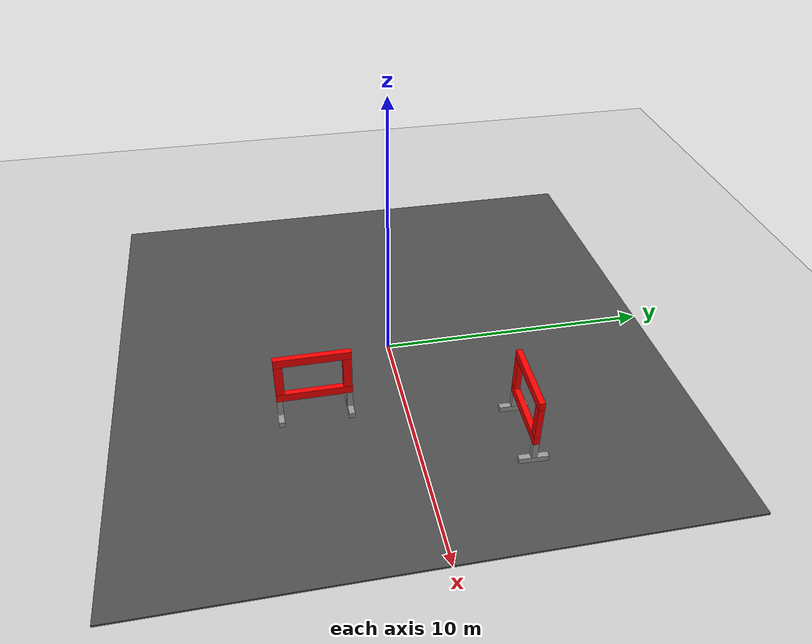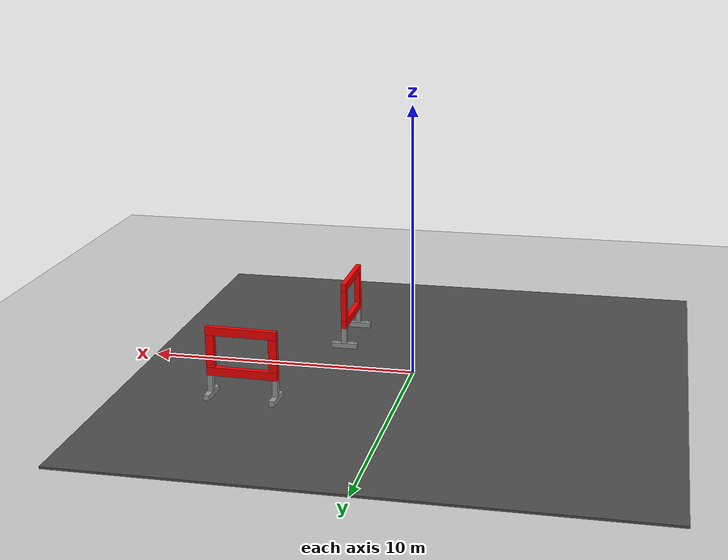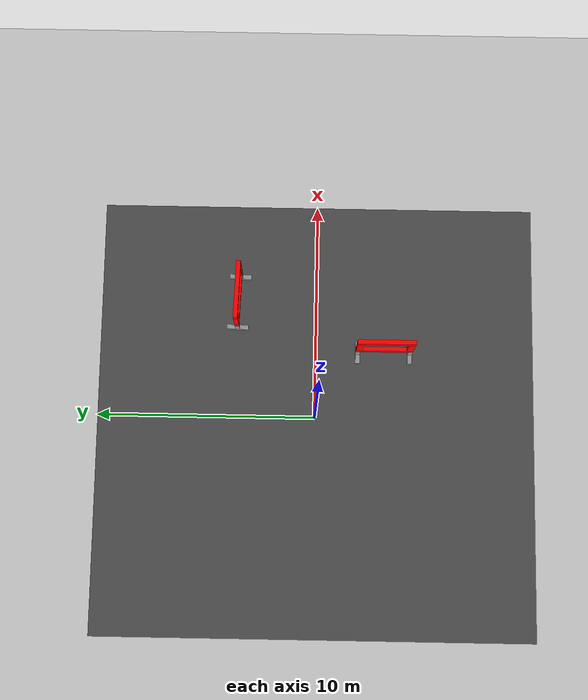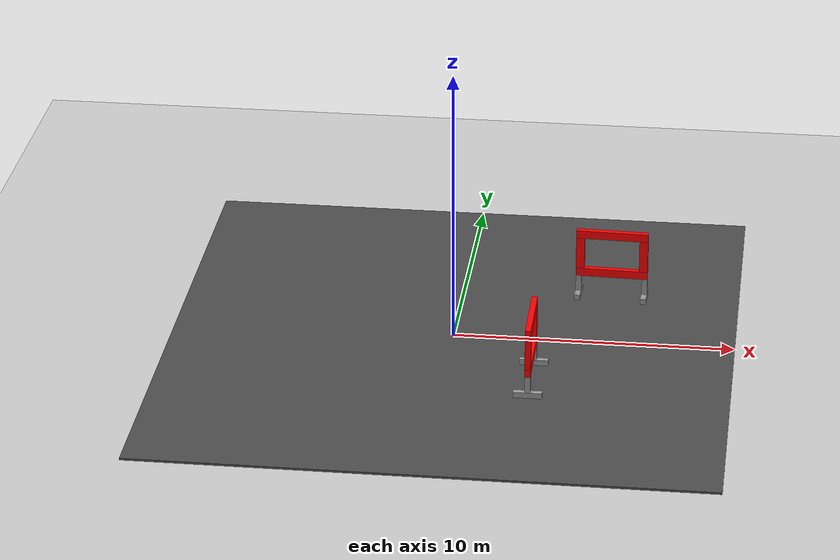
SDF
<sdf version="1.6">
 <world name="default">
  <model name="ground_plane">
   <static>1</static>
   <link name="link">
    <collision name="collision">
     <geometry><plane><normal>0 0 1</normal><size>100 100</size></plane></geometry>
     <surface>
      <contact><collide_bitmask>65535</collide_bitmask></contact>
      <friction><ode><mu>100</mu><mu2>50</mu2></ode></friction>
     </surface>
    </collision>
    <visual name="visual">
     <cast_shadows>0</cast_shadows>
     <geometry><plane><normal>0 0 1</normal><size>100 100</size></plane></geometry>
     <material>
      <script><uri>file://media/materials/scripts/gazebo.material</uri><name>Gazebo/Grey</name></script>
     </material>
    </visual>
   </link>
  </model>
  <model name="asphalt_plane">
   <static>1</static>
   <link name="link">
    <collision name="collision"><geometry><box><size>20 20 0.1</size></box></geometry></collision>
    <visual name="visual">
     <cast_shadows>0</cast_shadows>
     <geometry><box><size>20 20 0.1</size></box></geometry>
     <material>
      <script>
       <uri>model://asphalt_plane/materials/scripts</uri>
       <uri>model://asphalt_plane/materials/textures</uri>
       <name>vrc/asphalt</name>
      </script>
     </material>
    </visual>
   </link>
   <pose>-0.002774 -0.037133 0 0 -0 0</pose>
  </model>
  <model name="door_2_1.2_0">
   <model name="door">
    <link name="link_0">
     <inertial>
      <mass>1</mass>
      <inertia>
       <ixx>0.166667</ixx>
       <ixy>0</ixy>
       <ixz>0</ixz>
       <iyy>0.166667</iyy>
       <iyz>0</iyz>
       <izz>0.166667</izz>
      </inertia>
     </inertial>
     <pose>-0.195931 0.139969 -0.0875 0 -0 0</pose>
     <visual name="visual">
      <geometry><box><size>0.2 1 0.2</size></box></geometry>
      <material>
       <lighting>1</lighting>
       <script><uri>file://media/materials/scripts/gazebo.material</uri><name>Gazebo/Grey</name></script>
       <shader type="pixel"><normal_map>__default__</normal_map></shader>
       <ambient>0.4 0.4 0.4 1</ambient>
       <diffuse>0.7 0.7 0.7 1</diffuse>
       <specular>0.01 0.01 0.01 1</specular>
       <emissive>0 0 0 1</emissive>
      </material>
     </visual>
     <collision name="collision">
      <geometry><box><size>0.2 1 0.2</size></box></geometry>
      <surface>
       <friction>
        <ode><mu>1</mu><mu2>1</mu2><fdir1>0 0 0</fdir1><slip1>0</slip1><slip2>0</slip2></ode>
        <torsional>
         <coefficient>1</coefficient>
         <patch_radius>0</patch_radius>
         <surface_radius>0</surface_radius>
         <use_patch_radius>1</use_patch_radius>
         <ode><slip>0</slip></ode>
        </torsional>
       </friction>
       <bounce><restitution_coefficient>0</restitution_coefficient><threshold>1e+06</threshold></bounce>
       <contact>
        <collide_without_contact>0</collide_without_contact>
        <collide_without_contact_bitmask>1</collide_without_contact_bitmask>
        <collide_bitmask>1</collide_bitmask>
        <ode>
         <soft_cfm>0</soft_cfm>
         <soft_erp>0.2</soft_erp>
         <kp>1e+13</kp>
         <kd>1</kd>
         <max_vel>0.01</max_vel>
         <min_depth>0</min_depth>
        </ode>
        <bullet>
         <split_impulse>1</split_impulse>
         <split_impulse_penetration_threshold>-0.01</split_impulse_penetration_threshold>
         <soft_cfm>0</soft_cfm>
         <soft_erp>0.2</soft_erp>
         <kp>1e+13</kp>
         <kd>1</kd>
        </bullet>
       </contact>
      </surface>
     </collision>
    </link>
    <link name="link_0_clone">
     <inertial>
      <mass>1</mass>
      <inertia>
       <ixx>0.166667</ixx>
       <ixy>0</ixy>
       <ixz>0</ixz>
       <iyy>0.166667</iyy>
       <iyz>0</iyz>
       <izz>0.166667</izz>
      </inertia>
     </inertial>
     <pose>2.20407 0.139969 -0.0875 0 -0 0</pose>
     <visual name="visual">
      <geometry><box><size>0.2 1 0.2</size></box></geometry>
      <material>
       <lighting>1</lighting>
       <script><uri>file://media/materials/scripts/gazebo.material</uri><name>Gazebo/Grey</name></script>
       <shader type="pixel"><normal_map>__default__</normal_map></shader>
       <ambient>0.4 0.4 0.4 1</ambient>
       <diffuse>0.7 0.7 0.7 1</diffuse>
       <specular>0.01 0.01 0.01 1</specular>
       <emissive>0 0 0 1</emissive>
      </material>
     </visual>
     <collision name="collision">
      <geometry><box><size>0.2 1 0.2</size></box></geometry>
      <surface>
       <friction>
        <ode><mu>1</mu><mu2>1</mu2><fdir1>0 0 0</fdir1><slip1>0</slip1><slip2>0</slip2></ode>
        <torsional>
         <coefficient>1</coefficient>
         <patch_radius>0</patch_radius>
         <surface_radius>0</surface_radius>
         <use_patch_radius>1</use_patch_radius>
         <ode><slip>0</slip></ode>
        </torsional>
       </friction>
       <bounce><restitution_coefficient>0</restitution_coefficient><threshold>1e+06</threshold></bounce>
       <contact>
        <collide_without_contact>0</collide_without_contact>
        <collide_without_contact_bitmask>1</collide_without_contact_bitmask>
        <collide_bitmask>1</collide_bitmask>
        <ode>
         <soft_cfm>0</soft_cfm>
         <soft_erp>0.2</soft_erp>
         <kp>1e+13</kp>
         <kd>1</kd>
         <max_vel>0.01</max_vel>
         <min_depth>0</min_depth>
        </ode>
        <bullet>
         <split_impulse>1</split_impulse>
         <split_impulse_penetration_threshold>-0.01</split_impulse_penetration_threshold>
         <soft_cfm>0</soft_cfm>
         <soft_erp>0.2</soft_erp>
         <kp>1e+13</kp>
         <kd>1</kd>
        </bullet>
       </contact>
      </surface>
     </collision>
    </link>
    <link name="link_1">
     <inertial>
      <mass>1</mass>
      <inertia>
       <ixx>0.166667</ixx>
       <ixy>0</ixy>
       <ixz>0</ixz>
       <iyy>0.166667</iyy>
       <iyz>0</iyz>
       <izz>0.166667</izz>
      </inertia>
     </inertial>
     <pose>-0.195931 0.139969 0.3125 0 -0 0</pose>
     <visual name="visual">
      <geometry><box><size>0.2 0.2 0.6</size></box></geometry>
      <material>
       <lighting>1</lighting>
       <script><uri>file://media/materials/scripts/gazebo.material</uri><name>Gazebo/Grey</name></script>
       <shader type="pixel"><normal_map>__default__</normal_map></shader>
       <ambient>0.4 0.4 0.4 1</ambient>
       <diffuse>0.7 0.7 0.7 1</diffuse>
       <specular>0.01 0.01 0.01 1</specular>
       <emissive>0 0 0 1</emissive>
      </material>
     </visual>
     <collision name="collision">
      <geometry><box><size>0.2 0.2 0.6</size></box></geometry>
      <surface>
       <friction>
        <ode><mu>1</mu><mu2>1</mu2><fdir1>0 0 0</fdir1><slip1>0</slip1><slip2>0</slip2></ode>
        <torsional>
         <coefficient>1</coefficient>
         <patch_radius>0</patch_radius>
         <surface_radius>0</surface_radius>
         <use_patch_radius>1</use_patch_radius>
         <ode><slip>0</slip></ode>
        </torsional>
       </friction>
       <bounce><restitution_coefficient>0</restitution_coefficient><threshold>1e+06</threshold></bounce>
       <contact>
        <collide_without_contact>0</collide_without_contact>
        <collide_without_contact_bitmask>1</collide_without_contact_bitmask>
        <collide_bitmask>1</collide_bitmask>
        <ode>
         <soft_cfm>0</soft_cfm>
         <soft_erp>0.2</soft_erp>
         <kp>1e+13</kp>
         <kd>1</kd>
         <max_vel>0.01</max_vel>
         <min_depth>0</min_depth>
        </ode>
        <bullet>
         <split_impulse>1</split_impulse>
         <split_impulse_penetration_threshold>-0.01</split_impulse_penetration_threshold>
         <soft_cfm>0</soft_cfm>
         <soft_erp>0.2</soft_erp>
         <kp>1e+13</kp>
         <kd>1</kd>
        </bullet>
       </contact>
      </surface>
     </collision>
    </link>
    <link name="link_1_clone">
     <inertial>
      <mass>1</mass>
      <inertia>
       <ixx>0.166667</ixx>
       <ixy>0</ixy>
       <ixz>0</ixz>
       <iyy>0.166667</iyy>
       <iyz>0</iyz>
       <izz>0.166667</izz>
      </inertia>
     </inertial>
     <pose>2.20407 0.139969 0.3125 0 -0 0</pose>
     <visual name="visual">
      <geometry><box><size>0.2 0.2 0.6</size></box></geometry>
      <material>
       <lighting>1</lighting>
       <script><uri>file://media/materials/scripts/gazebo.material</uri><name>Gazebo/Grey</name></script>
       <shader type="pixel"><normal_map>__default__</normal_map></shader>
       <ambient>0.4 0.4 0.4 1</ambient>
       <diffuse>0.7 0.7 0.7 1</diffuse>
       <specular>0.01 0.01 0.01 1</specular>
       <emissive>0 0 0 1</emissive>
      </material>
     </visual>
     <collision name="collision">
      <geometry><box><size>0.2 0.2 0.6</size></box></geometry>
      <surface>
       <friction>
        <ode><mu>1</mu><mu2>1</mu2><fdir1>0 0 0</fdir1><slip1>0</slip1><slip2>0</slip2></ode>
        <torsional>
         <coefficient>1</coefficient>
         <patch_radius>0</patch_radius>
         <surface_radius>0</surface_radius>
         <use_patch_radius>1</use_patch_radius>
         <ode><slip>0</slip></ode>
        </torsional>
       </friction>
       <bounce><restitution_coefficient>0</restitution_coefficient><threshold>1e+06</threshold></bounce>
       <contact>
        <collide_without_contact>0</collide_without_contact>
        <collide_without_contact_bitmask>1</collide_without_contact_bitmask>
        <collide_bitmask>1</collide_bitmask>
        <ode>
         <soft_cfm>0</soft_cfm>
         <soft_erp>0.2</soft_erp>
         <kp>1e+13</kp>
         <kd>1</kd>
         <max_vel>0.01</max_vel>
         <min_depth>0</min_depth>
        </ode>
        <bullet>
         <split_impulse>1</split_impulse>
         <split_impulse_penetration_threshold>-0.01</split_impulse_penetration_threshold>
         <soft_cfm>0</soft_cfm>
         <soft_erp>0.2</soft_erp>
         <kp>1e+13</kp>
         <kd>1</kd>
        </bullet>
       </contact>
      </surface>
     </collision>
    </link>
    <link name="link_2">
     <inertial>
      <mass>1</mass>
      <inertia>
       <ixx>0.166667</ixx>
       <ixy>0</ixy>
       <ixz>0</ixz>
       <iyy>0.166667</iyy>
       <iyz>0</iyz>
       <izz>0.166667</izz>
      </inertia>
     </inertial>
     <pose>1.00407 0.139969 0.7625 0 -0 0</pose>
     <visual name="visual">
      <geometry><box><size>2.6 0.2 0.3</size></box></geometry>
      <material>
       <lighting>1</lighting>
       <script><uri>file://media/materials/scripts/gazebo.material</uri><name>Gazebo/Grey</name></script>
       <shader type="pixel"><normal_map>__default__</normal_map></shader>
       <ambient>1 0 0 1</ambient>
       <diffuse>0.7 0.7 0.7 1</diffuse>
       <specular>0.01 0.01 0.01 1</specular>
       <emissive>0 0 0 1</emissive>
      </material>
     </visual>
     <collision name="collision">
      <geometry><box><size>2.6 0.2 0.3</size></box></geometry>
      <surface>
       <friction>
        <ode><mu>1</mu><mu2>1</mu2><fdir1>0 0 0</fdir1><slip1>0</slip1><slip2>0</slip2></ode>
        <torsional>
         <coefficient>1</coefficient>
         <patch_radius>0</patch_radius>
         <surface_radius>0</surface_radius>
         <use_patch_radius>1</use_patch_radius>
         <ode><slip>0</slip></ode>
        </torsional>
       </friction>
       <bounce><restitution_coefficient>0</restitution_coefficient><threshold>1e+06</threshold></bounce>
       <contact>
        <collide_without_contact>0</collide_without_contact>
        <collide_without_contact_bitmask>1</collide_without_contact_bitmask>
        <collide_bitmask>1</collide_bitmask>
        <ode>
         <soft_cfm>0</soft_cfm>
         <soft_erp>0.2</soft_erp>
         <kp>1e+13</kp>
         <kd>1</kd>
         <max_vel>0.01</max_vel>
         <min_depth>0</min_depth>
        </ode>
        <bullet>
         <split_impulse>1</split_impulse>
         <split_impulse_penetration_threshold>-0.01</split_impulse_penetration_threshold>
         <soft_cfm>0</soft_cfm>
         <soft_erp>0.2</soft_erp>
         <kp>1e+13</kp>
         <kd>1</kd>
        </bullet>
       </contact>
      </surface>
     </collision>
    </link>
    <link name="link_2_clone">
     <inertial>
      <mass>1</mass>
      <inertia>
       <ixx>0.166667</ixx>
       <ixy>0</ixy>
       <ixz>0</ixz>
       <iyy>0.166667</iyy>
       <iyz>0</iyz>
       <izz>0.166667</izz>
      </inertia>
     </inertial>
     <pose>1.00407 0.139969 2.2625 0 -0 0</pose>
     <visual name="visual">
      <geometry><box><size>2.6 0.2 0.3</size></box></geometry>
      <material>
       <lighting>1</lighting>
       <script><uri>file://media/materials/scripts/gazebo.material</uri><name>Gazebo/Grey</name></script>
       <shader type="pixel"><normal_map>__default__</normal_map></shader>
       <ambient>1 0 0 1</ambient>
       <diffuse>0 0 0 1</diffuse>
       <specular>0 0 0 1</specular>
       <emissive>0 0 0 1</emissive>
      </material>
     </visual>
     <collision name="collision">
      <geometry><box><size>2.6 0.2 0.3</size></box></geometry>
      <surface>
       <friction>
        <ode><mu>1</mu><mu2>1</mu2><fdir1>0 0 0</fdir1><slip1>0</slip1><slip2>0</slip2></ode>
        <torsional>
         <coefficient>1</coefficient>
         <patch_radius>0</patch_radius>
         <surface_radius>0</surface_radius>
         <use_patch_radius>1</use_patch_radius>
         <ode><slip>0</slip></ode>
        </torsional>
       </friction>
       <bounce><restitution_coefficient>0</restitution_coefficient><threshold>1e+06</threshold></bounce>
       <contact>
        <collide_without_contact>0</collide_without_contact>
        <collide_without_contact_bitmask>1</collide_without_contact_bitmask>
        <collide_bitmask>1</collide_bitmask>
        <ode>
         <soft_cfm>0</soft_cfm>
         <soft_erp>0.2</soft_erp>
         <kp>1e+13</kp>
         <kd>1</kd>
         <max_vel>0.01</max_vel>
         <min_depth>0</min_depth>
        </ode>
        <bullet>
         <split_impulse>1</split_impulse>
         <split_impulse_penetration_threshold>-0.01</split_impulse_penetration_threshold>
         <soft_cfm>0</soft_cfm>
         <soft_erp>0.2</soft_erp>
         <kp>1e+13</kp>
         <kd>1</kd>
        </bullet>
       </contact>
      </surface>
     </collision>
    </link>
    <link name="link_3">
     <inertial>
      <mass>1</mass>
      <inertia>
       <ixx>0.166667</ixx>
       <ixy>0</ixy>
       <ixz>0</ixz>
       <iyy>0.166667</iyy>
       <iyz>0</iyz>
       <izz>0.166667</izz>
      </inertia>
     </inertial>
     <pose>-0.145931 0.139969 1.5125 0 -0 0</pose>
     <visual name="visual">
      <geometry><box><size>0.3 0.2 1.2</size></box></geometry>
      <material>
       <lighting>1</lighting>
       <script><uri>file://media/materials/scripts/gazebo.material</uri><name>Gazebo/Grey</name></script>
       <shader type="pixel"><normal_map>__default__</normal_map></shader>
       <ambient>1 0 0 1</ambient>
       <diffuse>0.7 0.7 0.7 1</diffuse>
       <specular>0.01 0.01 0.01 1</specular>
       <emissive>0 0 0 1</emissive>
      </material>
     </visual>
     <collision name="collision">
      <geometry><box><size>0.3 0.2 1.2</size></box></geometry>
      <surface>
       <friction>
        <ode><mu>1</mu><mu2>1</mu2><fdir1>0 0 0</fdir1><slip1>0</slip1><slip2>0</slip2></ode>
        <torsional>
         <coefficient>1</coefficient>
         <patch_radius>0</patch_radius>
         <surface_radius>0</surface_radius>
         <use_patch_radius>1</use_patch_radius>
         <ode><slip>0</slip></ode>
        </torsional>
       </friction>
       <bounce><restitution_coefficient>0</restitution_coefficient><threshold>1e+06</threshold></bounce>
       <contact>
        <collide_without_contact>0</collide_without_contact>
        <collide_without_contact_bitmask>1</collide_without_contact_bitmask>
        <collide_bitmask>1</collide_bitmask>
        <ode>
         <soft_cfm>0</soft_cfm>
         <soft_erp>0.2</soft_erp>
         <kp>1e+13</kp>
         <kd>1</kd>
         <max_vel>0.01</max_vel>
         <min_depth>0</min_depth>
        </ode>
        <bullet>
         <split_impulse>1</split_impulse>
         <split_impulse_penetration_threshold>-0.01</split_impulse_penetration_threshold>
         <soft_cfm>0</soft_cfm>
         <soft_erp>0.2</soft_erp>
         <kp>1e+13</kp>
         <kd>1</kd>
        </bullet>
       </contact>
      </surface>
     </collision>
    </link>
    <link name="link_3_clone">
     <inertial>
      <mass>1</mass>
      <inertia>
       <ixx>0.166667</ixx>
       <ixy>0</ixy>
       <ixz>0</ixz>
       <iyy>0.166667</iyy>
       <iyz>0</iyz>
       <izz>0.166667</izz>
      </inertia>
     </inertial>
     <pose>2.15407 0.139969 1.5125 0 -0 0</pose>
     <visual name="visual">
      <geometry><box><size>0.3 0.2 1.2</size></box></geometry>
      <material>
       <lighting>1</lighting>
       <script><uri>file://media/materials/scripts/gazebo.material</uri><name>Gazebo/Grey</name></script>
       <shader type="pixel"><normal_map>__default__</normal_map></shader>
       <ambient>1 0 0 1</ambient>
       <diffuse>0.7 0.7 0.7 1</diffuse>
       <specular>0.01 0.01 0.01 1</specular>
       <emissive>0 0 0 1</emissive>
      </material>
     </visual>
     <collision name="collision">
      <geometry><box><size>0.3 0.2 1.2</size></box></geometry>
      <surface>
       <friction>
        <ode><mu>1</mu><mu2>1</mu2><fdir1>0 0 0</fdir1><slip1>0</slip1><slip2>0</slip2></ode>
        <torsional>
         <coefficient>1</coefficient>
         <patch_radius>0</patch_radius>
         <surface_radius>0</surface_radius>
         <use_patch_radius>1</use_patch_radius>
         <ode><slip>0</slip></ode>
        </torsional>
       </friction>
       <bounce><restitution_coefficient>0</restitution_coefficient><threshold>1e+06</threshold></bounce>
       <contact>
        <collide_without_contact>0</collide_without_contact>
        <collide_without_contact_bitmask>1</collide_without_contact_bitmask>
        <collide_bitmask>1</collide_bitmask>
        <ode>
         <soft_cfm>0</soft_cfm>
         <soft_erp>0.2</soft_erp>
         <kp>1e+13</kp>
         <kd>1</kd>
         <max_vel>0.01</max_vel>
         <min_depth>0</min_depth>
        </ode>
        <bullet>
         <split_impulse>1</split_impulse>
         <split_impulse_penetration_threshold>-0.01</split_impulse_penetration_threshold>
         <soft_cfm>0</soft_cfm>
         <soft_erp>0.2</soft_erp>
         <kp>1e+13</kp>
         <kd>1</kd>
        </bullet>
       </contact>
      </surface>
     </collision>
    </link>
    <joint name="link_0_JOINT_0" type="fixed">
     <parent>link_0</parent>
     <child>link_0_clone</child>
     <physics>
      <ode><limit><cfm>0</cfm><erp>0.2</erp></limit><suspension><cfm>0</cfm><erp>0.2</erp></suspension></ode>
     </physics>
    </joint>
    <joint name="link_0_JOINT_1" type="fixed">
     <parent>link_0</parent>
     <child>link_1</child>
     <physics>
      <ode><limit><cfm>0</cfm><erp>0.2</erp></limit><suspension><cfm>0</cfm><erp>0.2</erp></suspension></ode>
     </physics>
    </joint>
    <joint name="link_0_clone_JOINT_2" type="fixed">
     <parent>link_0_clone</parent>
     <child>link_1_clone</child>
     <physics>
      <ode><limit><cfm>0</cfm><erp>0.2</erp></limit><suspension><cfm>0</cfm><erp>0.2</erp></suspension></ode>
     </physics>
    </joint>
    <joint name="link_1_JOINT_3" type="fixed">
     <parent>link_1</parent>
     <child>link_2</child>
     <physics>
      <ode><limit><cfm>0</cfm><erp>0.2</erp></limit><suspension><cfm>0</cfm><erp>0.2</erp></suspension></ode>
     </physics>
    </joint>
    <joint name="link_2_JOINT_4" type="fixed">
     <parent>link_2</parent>
     <child>link_3</child>
     <physics>
      <ode><limit><cfm>0</cfm><erp>0.2</erp></limit><suspension><cfm>0</cfm><erp>0.2</erp></suspension></ode>
     </physics>
    </joint>
    <joint name="link_2_JOINT_5" type="fixed">
     <parent>link_2</parent>
     <child>link_3_clone</child>
     <physics>
      <ode><limit><cfm>0</cfm><erp>0.2</erp></limit><suspension><cfm>0</cfm><erp>0.2</erp></suspension></ode>
     </physics>
    </joint>
    <joint name="link_2_JOINT_6" type="fixed">
     <parent>link_2</parent>
     <child>link_2_clone</child>
     <physics>
      <ode><limit><cfm>0</cfm><erp>0.2</erp></limit><suspension><cfm>0</cfm><erp>0.2</erp></suspension></ode>
     </physics>
    </joint>
    <static>0</static>
   </model>
   <static>0</static>
   <pose>3.20508 -4.12663 0.237361 -2e-06 9.3e-05 1.57435</pose>
  </model>
  <model name="door_2_1.2_0_clone_0">
   <model name="door">
    <link name="link_0">
     <inertial>
      <mass>1</mass>
      <inertia>
       <ixx>0.166667</ixx>
       <ixy>0</ixy>
       <ixz>0</ixz>
       <iyy>0.166667</iyy>
       <iyz>0</iyz>
       <izz>0.166667</izz>
      </inertia>
     </inertial>
     <pose>-0.195931 0.139969 -0.0875 0 -0 0</pose>
     <visual name="visual">
      <geometry><box><size>0.2 1 0.2</size></box></geometry>
      <material>
       <lighting>1</lighting>
       <script><uri>file://media/materials/scripts/gazebo.material</uri><name>Gazebo/Grey</name></script>
       <shader type="pixel"><normal_map>__default__</normal_map></shader>
       <ambient>0.4 0.4 0.4 1</ambient>
       <diffuse>0.7 0.7 0.7 1</diffuse>
       <specular>0.01 0.01 0.01 1</specular>
       <emissive>0 0 0 1</emissive>
      </material>
     </visual>
     <collision name="collision">
      <geometry><box><size>0.2 1 0.2</size></box></geometry>
      <surface>
       <friction>
        <ode><mu>1</mu><mu2>1</mu2><fdir1>0 0 0</fdir1><slip1>0</slip1><slip2>0</slip2></ode>
        <torsional>
         <coefficient>1</coefficient>
         <patch_radius>0</patch_radius>
         <surface_radius>0</surface_radius>
         <use_patch_radius>1</use_patch_radius>
         <ode><slip>0</slip></ode>
        </torsional>
       </friction>
       <bounce><restitution_coefficient>0</restitution_coefficient><threshold>1e+06</threshold></bounce>
       <contact>
        <collide_without_contact>0</collide_without_contact>
        <collide_without_contact_bitmask>1</collide_without_contact_bitmask>
        <collide_bitmask>1</collide_bitmask>
        <ode>
         <soft_cfm>0</soft_cfm>
         <soft_erp>0.2</soft_erp>
         <kp>1e+13</kp>
         <kd>1</kd>
         <max_vel>0.01</max_vel>
         <min_depth>0</min_depth>
        </ode>
        <bullet>
         <split_impulse>1</split_impulse>
         <split_impulse_penetration_threshold>-0.01</split_impulse_penetration_threshold>
         <soft_cfm>0</soft_cfm>
         <soft_erp>0.2</soft_erp>
         <kp>1e+13</kp>
         <kd>1</kd>
        </bullet>
       </contact>
      </surface>
     </collision>
    </link>
    <link name="link_0_clone">
     <inertial>
      <mass>1</mass>
      <inertia>
       <ixx>0.166667</ixx>
       <ixy>0</ixy>
       <ixz>0</ixz>
       <iyy>0.166667</iyy>
       <iyz>0</iyz>
       <izz>0.166667</izz>
      </inertia>
     </inertial>
     <pose>2.20407 0.139969 -0.0875 0 -0 0</pose>
     <visual name="visual">
      <geometry><box><size>0.2 1 0.2</size></box></geometry>
      <material>
       <lighting>1</lighting>
       <script><uri>file://media/materials/scripts/gazebo.material</uri><name>Gazebo/Grey</name></script>
       <shader type="pixel"><normal_map>__default__</normal_map></shader>
       <ambient>0.4 0.4 0.4 1</ambient>
       <diffuse>0.7 0.7 0.7 1</diffuse>
       <specular>0.01 0.01 0.01 1</specular>
       <emissive>0 0 0 1</emissive>
      </material>
     </visual>
     <collision name="collision">
      <geometry><box><size>0.2 1 0.2</size></box></geometry>
      <surface>
       <friction>
        <ode><mu>1</mu><mu2>1</mu2><fdir1>0 0 0</fdir1><slip1>0</slip1><slip2>0</slip2></ode>
        <torsional>
         <coefficient>1</coefficient>
         <patch_radius>0</patch_radius>
         <surface_radius>0</surface_radius>
         <use_patch_radius>1</use_patch_radius>
         <ode><slip>0</slip></ode>
        </torsional>
       </friction>
       <bounce><restitution_coefficient>0</restitution_coefficient><threshold>1e+06</threshold></bounce>
       <contact>
        <collide_without_contact>0</collide_without_contact>
        <collide_without_contact_bitmask>1</collide_without_contact_bitmask>
        <collide_bitmask>1</collide_bitmask>
        <ode>
         <soft_cfm>0</soft_cfm>
         <soft_erp>0.2</soft_erp>
         <kp>1e+13</kp>
         <kd>1</kd>
         <max_vel>0.01</max_vel>
         <min_depth>0</min_depth>
        </ode>
        <bullet>
         <split_impulse>1</split_impulse>
         <split_impulse_penetration_threshold>-0.01</split_impulse_penetration_threshold>
         <soft_cfm>0</soft_cfm>
         <soft_erp>0.2</soft_erp>
         <kp>1e+13</kp>
         <kd>1</kd>
        </bullet>
       </contact>
      </surface>
     </collision>
    </link>
    <link name="link_1">
     <inertial>
      <mass>1</mass>
      <inertia>
       <ixx>0.166667</ixx>
       <ixy>0</ixy>
       <ixz>0</ixz>
       <iyy>0.166667</iyy>
       <iyz>0</iyz>
       <izz>0.166667</izz>
      </inertia>
     </inertial>
     <pose>-0.195931 0.139969 0.3125 0 -0 0</pose>
     <visual name="visual">
      <geometry><box><size>0.2 0.2 0.6</size></box></geometry>
      <material>
       <lighting>1</lighting>
       <script><uri>file://media/materials/scripts/gazebo.material</uri><name>Gazebo/Grey</name></script>
       <shader type="pixel"><normal_map>__default__</normal_map></shader>
       <ambient>0.4 0.4 0.4 1</ambient>
       <diffuse>0.7 0.7 0.7 1</diffuse>
       <specular>0.01 0.01 0.01 1</specular>
       <emissive>0 0 0 1</emissive>
      </material>
     </visual>
     <collision name="collision">
      <geometry><box><size>0.2 0.2 0.6</size></box></geometry>
      <surface>
       <friction>
        <ode><mu>1</mu><mu2>1</mu2><fdir1>0 0 0</fdir1><slip1>0</slip1><slip2>0</slip2></ode>
        <torsional>
         <coefficient>1</coefficient>
         <patch_radius>0</patch_radius>
         <surface_radius>0</surface_radius>
         <use_patch_radius>1</use_patch_radius>
         <ode><slip>0</slip></ode>
        </torsional>
       </friction>
       <bounce><restitution_coefficient>0</restitution_coefficient><threshold>1e+06</threshold></bounce>
       <contact>
        <collide_without_contact>0</collide_without_contact>
        <collide_without_contact_bitmask>1</collide_without_contact_bitmask>
        <collide_bitmask>1</collide_bitmask>
        <ode>
         <soft_cfm>0</soft_cfm>
         <soft_erp>0.2</soft_erp>
         <kp>1e+13</kp>
         <kd>1</kd>
         <max_vel>0.01</max_vel>
         <min_depth>0</min_depth>
        </ode>
        <bullet>
         <split_impulse>1</split_impulse>
         <split_impulse_penetration_threshold>-0.01</split_impulse_penetration_threshold>
         <soft_cfm>0</soft_cfm>
         <soft_erp>0.2</soft_erp>
         <kp>1e+13</kp>
         <kd>1</kd>
        </bullet>
       </contact>
      </surface>
     </collision>
    </link>
    <link name="link_1_clone">
     <inertial>
      <mass>1</mass>
      <inertia>
       <ixx>0.166667</ixx>
       <ixy>0</ixy>
       <ixz>0</ixz>
       <iyy>0.166667</iyy>
       <iyz>0</iyz>
       <izz>0.166667</izz>
      </inertia>
     </inertial>
     <pose>2.20407 0.139969 0.3125 0 -0 0</pose>
     <visual name="visual">
      <geometry><box><size>0.2 0.2 0.6</size></box></geometry>
      <material>
       <lighting>1</lighting>
       <script><uri>file://media/materials/scripts/gazebo.material</uri><name>Gazebo/Grey</name></script>
       <shader type="pixel"><normal_map>__default__</normal_map></shader>
       <ambient>0.4 0.4 0.4 1</ambient>
       <diffuse>0.7 0.7 0.7 1</diffuse>
       <specular>0.01 0.01 0.01 1</specular>
       <emissive>0 0 0 1</emissive>
      </material>
     </visual>
     <collision name="collision">
      <geometry><box><size>0.2 0.2 0.6</size></box></geometry>
      <surface>
       <friction>
        <ode><mu>1</mu><mu2>1</mu2><fdir1>0 0 0</fdir1><slip1>0</slip1><slip2>0</slip2></ode>
        <torsional>
         <coefficient>1</coefficient>
         <patch_radius>0</patch_radius>
         <surface_radius>0</surface_radius>
         <use_patch_radius>1</use_patch_radius>
         <ode><slip>0</slip></ode>
        </torsional>
       </friction>
       <bounce><restitution_coefficient>0</restitution_coefficient><threshold>1e+06</threshold></bounce>
       <contact>
        <collide_without_contact>0</collide_without_contact>
        <collide_without_contact_bitmask>1</collide_without_contact_bitmask>
        <collide_bitmask>1</collide_bitmask>
        <ode>
         <soft_cfm>0</soft_cfm>
         <soft_erp>0.2</soft_erp>
         <kp>1e+13</kp>
         <kd>1</kd>
         <max_vel>0.01</max_vel>
         <min_depth>0</min_depth>
        </ode>
        <bullet>
         <split_impulse>1</split_impulse>
         <split_impulse_penetration_threshold>-0.01</split_impulse_penetration_threshold>
         <soft_cfm>0</soft_cfm>
         <soft_erp>0.2</soft_erp>
         <kp>1e+13</kp>
         <kd>1</kd>
        </bullet>
       </contact>
      </surface>
     </collision>
    </link>
    <link name="link_2">
     <inertial>
      <mass>1</mass>
      <inertia>
       <ixx>0.166667</ixx>
       <ixy>0</ixy>
       <ixz>0</ixz>
       <iyy>0.166667</iyy>
       <iyz>0</iyz>
       <izz>0.166667</izz>
      </inertia>
     </inertial>
     <pose>1.00407 0.139969 0.7625 0 -0 0</pose>
     <visual name="visual">
      <geometry><box><size>2.6 0.2 0.3</size></box></geometry>
      <material>
       <lighting>1</lighting>
       <script><uri>file://media/materials/scripts/gazebo.material</uri><name>Gazebo/Grey</name></script>
       <shader type="pixel"><normal_map>__default__</normal_map></shader>
       <ambient>1 0 0 1</ambient>
       <diffuse>0.7 0.7 0.7 1</diffuse>
       <specular>0.01 0.01 0.01 1</specular>
       <emissive>0 0 0 1</emissive>
      </material>
     </visual>
     <collision name="collision">
      <geometry><box><size>2.6 0.2 0.3</size></box></geometry>
      <surface>
       <friction>
        <ode><mu>1</mu><mu2>1</mu2><fdir1>0 0 0</fdir1><slip1>0</slip1><slip2>0</slip2></ode>
        <torsional>
         <coefficient>1</coefficient>
         <patch_radius>0</patch_radius>
         <surface_radius>0</surface_radius>
         <use_patch_radius>1</use_patch_radius>
         <ode><slip>0</slip></ode>
        </torsional>
       </friction>
       <bounce><restitution_coefficient>0</restitution_coefficient><threshold>1e+06</threshold></bounce>
       <contact>
        <collide_without_contact>0</collide_without_contact>
        <collide_without_contact_bitmask>1</collide_without_contact_bitmask>
        <collide_bitmask>1</collide_bitmask>
        <ode>
         <soft_cfm>0</soft_cfm>
         <soft_erp>0.2</soft_erp>
         <kp>1e+13</kp>
         <kd>1</kd>
         <max_vel>0.01</max_vel>
         <min_depth>0</min_depth>
        </ode>
        <bullet>
         <split_impulse>1</split_impulse>
         <split_impulse_penetration_threshold>-0.01</split_impulse_penetration_threshold>
         <soft_cfm>0</soft_cfm>
         <soft_erp>0.2</soft_erp>
         <kp>1e+13</kp>
         <kd>1</kd>
        </bullet>
       </contact>
      </surface>
     </collision>
    </link>
    <link name="link_2_clone">
     <inertial>
      <mass>1</mass>
      <inertia>
       <ixx>0.166667</ixx>
       <ixy>0</ixy>
       <ixz>0</ixz>
       <iyy>0.166667</iyy>
       <iyz>0</iyz>
       <izz>0.166667</izz>
      </inertia>
     </inertial>
     <pose>1.00407 0.139969 2.2625 0 -0 0</pose>
     <visual name="visual">
      <geometry><box><size>2.6 0.2 0.3</size></box></geometry>
      <material>
       <lighting>1</lighting>
       <script><uri>file://media/materials/scripts/gazebo.material</uri><name>Gazebo/Grey</name></script>
       <shader type="pixel"><normal_map>__default__</normal_map></shader>
       <ambient>1 0 0 1</ambient>
       <diffuse>0 0 0 1</diffuse>
       <specular>0 0 0 1</specular>
       <emissive>0 0 0 1</emissive>
      </material>
     </visual>
     <collision name="collision">
      <geometry><box><size>2.6 0.2 0.3</size></box></geometry>
      <surface>
       <friction>
        <ode><mu>1</mu><mu2>1</mu2><fdir1>0 0 0</fdir1><slip1>0</slip1><slip2>0</slip2></ode>
        <torsional>
         <coefficient>1</coefficient>
         <patch_radius>0</patch_radius>
         <surface_radius>0</surface_radius>
         <use_patch_radius>1</use_patch_radius>
         <ode><slip>0</slip></ode>
        </torsional>
       </friction>
       <bounce><restitution_coefficient>0</restitution_coefficient><threshold>1e+06</threshold></bounce>
       <contact>
        <collide_without_contact>0</collide_without_contact>
        <collide_without_contact_bitmask>1</collide_without_contact_bitmask>
        <collide_bitmask>1</collide_bitmask>
        <ode>
         <soft_cfm>0</soft_cfm>
         <soft_erp>0.2</soft_erp>
         <kp>1e+13</kp>
         <kd>1</kd>
         <max_vel>0.01</max_vel>
         <min_depth>0</min_depth>
        </ode>
        <bullet>
         <split_impulse>1</split_impulse>
         <split_impulse_penetration_threshold>-0.01</split_impulse_penetration_threshold>
         <soft_cfm>0</soft_cfm>
         <soft_erp>0.2</soft_erp>
         <kp>1e+13</kp>
         <kd>1</kd>
        </bullet>
       </contact>
      </surface>
     </collision>
    </link>
    <link name="link_3">
     <inertial>
      <mass>1</mass>
      <inertia>
       <ixx>0.166667</ixx>
       <ixy>0</ixy>
       <ixz>0</ixz>
       <iyy>0.166667</iyy>
       <iyz>0</iyz>
       <izz>0.166667</izz>
      </inertia>
     </inertial>
     <pose>-0.145931 0.139969 1.5125 0 -0 0</pose>
     <visual name="visual">
      <geometry><box><size>0.3 0.2 1.2</size></box></geometry>
      <material>
       <lighting>1</lighting>
       <script><uri>file://media/materials/scripts/gazebo.material</uri><name>Gazebo/Grey</name></script>
       <shader type="pixel"><normal_map>__default__</normal_map></shader>
       <ambient>1 0 0 1</ambient>
       <diffuse>0.7 0.7 0.7 1</diffuse>
       <specular>0.01 0.01 0.01 1</specular>
       <emissive>0 0 0 1</emissive>
      </material>
     </visual>
     <collision name="collision">
      <geometry><box><size>0.3 0.2 1.2</size></box></geometry>
      <surface>
       <friction>
        <ode><mu>1</mu><mu2>1</mu2><fdir1>0 0 0</fdir1><slip1>0</slip1><slip2>0</slip2></ode>
        <torsional>
         <coefficient>1</coefficient>
         <patch_radius>0</patch_radius>
         <surface_radius>0</surface_radius>
         <use_patch_radius>1</use_patch_radius>
         <ode><slip>0</slip></ode>
        </torsional>
       </friction>
       <bounce><restitution_coefficient>0</restitution_coefficient><threshold>1e+06</threshold></bounce>
       <contact>
        <collide_without_contact>0</collide_without_contact>
        <collide_without_contact_bitmask>1</collide_without_contact_bitmask>
        <collide_bitmask>1</collide_bitmask>
        <ode>
         <soft_cfm>0</soft_cfm>
         <soft_erp>0.2</soft_erp>
         <kp>1e+13</kp>
         <kd>1</kd>
         <max_vel>0.01</max_vel>
         <min_depth>0</min_depth>
        </ode>
        <bullet>
         <split_impulse>1</split_impulse>
         <split_impulse_penetration_threshold>-0.01</split_impulse_penetration_threshold>
         <soft_cfm>0</soft_cfm>
         <soft_erp>0.2</soft_erp>
         <kp>1e+13</kp>
         <kd>1</kd>
        </bullet>
       </contact>
      </surface>
     </collision>
    </link>
    <link name="link_3_clone">
     <inertial>
      <mass>1</mass>
      <inertia>
       <ixx>0.166667</ixx>
       <ixy>0</ixy>
       <ixz>0</ixz>
       <iyy>0.166667</iyy>
       <iyz>0</iyz>
       <izz>0.166667</izz>
      </inertia>
     </inertial>
     <pose>2.15407 0.139969 1.5125 0 -0 0</pose>
     <visual name="visual">
      <geometry><box><size>0.3 0.2 1.2</size></box></geometry>
      <material>
       <lighting>1</lighting>
       <script><uri>file://media/materials/scripts/gazebo.material</uri><name>Gazebo/Grey</name></script>
       <shader type="pixel"><normal_map>__default__</normal_map></shader>
       <ambient>1 0 0 1</ambient>
       <diffuse>0.7 0.7 0.7 1</diffuse>
       <specular>0.01 0.01 0.01 1</specular>
       <emissive>0 0 0 1</emissive>
      </material>
     </visual>
     <collision name="collision">
      <geometry><box><size>0.3 0.2 1.2</size></box></geometry>
      <surface>
       <friction>
        <ode><mu>1</mu><mu2>1</mu2><fdir1>0 0 0</fdir1><slip1>0</slip1><slip2>0</slip2></ode>
        <torsional>
         <coefficient>1</coefficient>
         <patch_radius>0</patch_radius>
         <surface_radius>0</surface_radius>
         <use_patch_radius>1</use_patch_radius>
         <ode><slip>0</slip></ode>
        </torsional>
       </friction>
       <bounce><restitution_coefficient>0</restitution_coefficient><threshold>1e+06</threshold></bounce>
       <contact>
        <collide_without_contact>0</collide_without_contact>
        <collide_without_contact_bitmask>1</collide_without_contact_bitmask>
        <collide_bitmask>1</collide_bitmask>
        <ode>
         <soft_cfm>0</soft_cfm>
         <soft_erp>0.2</soft_erp>
         <kp>1e+13</kp>
         <kd>1</kd>
         <max_vel>0.01</max_vel>
         <min_depth>0</min_depth>
        </ode>
        <bullet>
         <split_impulse>1</split_impulse>
         <split_impulse_penetration_threshold>-0.01</split_impulse_penetration_threshold>
         <soft_cfm>0</soft_cfm>
         <soft_erp>0.2</soft_erp>
         <kp>1e+13</kp>
         <kd>1</kd>
        </bullet>
       </contact>
      </surface>
     </collision>
    </link>
    <joint name="link_0_JOINT_0" type="fixed">
     <parent>link_0</parent>
     <child>link_0_clone</child>
     <physics>
      <ode><limit><cfm>0</cfm><erp>0.2</erp></limit><suspension><cfm>0</cfm><erp>0.2</erp></suspension></ode>
     </physics>
    </joint>
    <joint name="link_0_JOINT_1" type="fixed">
     <parent>link_0</parent>
     <child>link_1</child>
     <physics>
      <ode><limit><cfm>0</cfm><erp>0.2</erp></limit><suspension><cfm>0</cfm><erp>0.2</erp></suspension></ode>
     </physics>
    </joint>
    <joint name="link_0_clone_JOINT_2" type="fixed">
     <parent>link_0_clone</parent>
     <child>link_1_clone</child>
     <physics>
      <ode><limit><cfm>0</cfm><erp>0.2</erp></limit><suspension><cfm>0</cfm><erp>0.2</erp></suspension></ode>
     </physics>
    </joint>
    <joint name="link_1_JOINT_3" type="fixed">
     <parent>link_1</parent>
     <child>link_2</child>
     <physics>
      <ode><limit><cfm>0</cfm><erp>0.2</erp></limit><suspension><cfm>0</cfm><erp>0.2</erp></suspension></ode>
     </physics>
    </joint>
    <joint name="link_2_JOINT_4" type="fixed">
     <parent>link_2</parent>
     <child>link_3</child>
     <physics>
      <ode><limit><cfm>0</cfm><erp>0.2</erp></limit><suspension><cfm>0</cfm><erp>0.2</erp></suspension></ode>
     </physics>
    </joint>
    <joint name="link_2_JOINT_5" type="fixed">
     <parent>link_2</parent>
     <child>link_3_clone</child>
     <physics>
      <ode><limit><cfm>0</cfm><erp>0.2</erp></limit><suspension><cfm>0</cfm><erp>0.2</erp></suspension></ode>
     </physics>
    </joint>
    <joint name="link_2_JOINT_6" type="fixed">
     <parent>link_2</parent>
     <child>link_2_clone</child>
     <physics>
      <ode><limit><cfm>0</cfm><erp>0.2</erp></limit><suspension><cfm>0</cfm><erp>0.2</erp></suspension></ode>
     </physics>
    </joint>
    <static>0</static>
   </model>
   <static>0</static>
   <pose>6.37237 3.6911 0.237361 -2e-06 9.3e-05 3.10659</pose>
  </model>
 </world>
</sdf>
